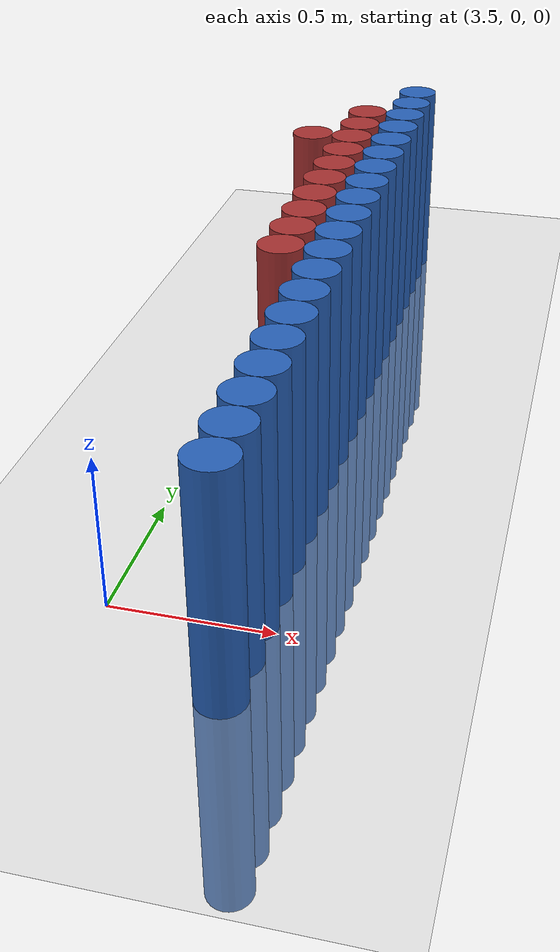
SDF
<sdf version="1.6">
 <world name="default">
  <model name="ground_plane">
   <static>1</static>
   <link name="link">
    <collision name="collision">
     <geometry><plane><normal>0 0 1</normal><size>100 100</size></plane></geometry>
     <surface><friction><ode><mu>100</mu><mu2>50</mu2></ode></friction></surface>
    </collision>
    <visual name="visual">
     <cast_shadows>0</cast_shadows>
     <geometry><plane><normal>0 0 1</normal><size>100 100</size></plane></geometry>
     <material>
      <script><uri>file://media/materials/scripts/gazebo.material</uri><name>Gazebo/Grey</name></script>
     </material>
    </visual>
   </link>
  </model>
  <model name="unit_cylinder_112">
   <static>1</static>
   <pose>3.925000 -0.125000 0.000000 0.000000 0.000000 0.000000</pose>
   <link name="link">
    <inertial>
     <mass>1</mass>
     <inertia><ixx>0.145833</ixx><ixy>0</ixy><ixz>0</ixz><iyy>0.145833</iyy><iyz>0</iyz><izz>0.125</izz></inertia>
    </inertial>
    <collision name="collision">
     <geometry><cylinder><radius>0.075000</radius><length>1.5</length></cylinder></geometry>
    </collision>
    <visual name="visual">
     <geometry><cylinder><radius>0.075000</radius><length>1.5</length></cylinder></geometry>
     <material>
      <ambient>0.152000 0.379000 0.720000 1</ambient>
      <diffuse>0.152000 0.379000 0.720000 1</diffuse>
     </material>
     <material>
      <script><name>Gazebo/Grey</name><uri>file://media/materials/scripts/gazebo.material</uri></script>
     </material>
    </visual>
   </link>
  </model>
  <model name="unit_cylinder_114">
   <static>1</static>
   <pose>3.925000 0.025000 0.000000 0.000000 0.000000 0.000000</pose>
   <link name="link">
    <inertial>
     <mass>1</mass>
     <inertia><ixx>0.145833</ixx><ixy>0</ixy><ixz>0</ixz><iyy>0.145833</iyy><iyz>0</iyz><izz>0.125</izz></inertia>
    </inertial>
    <collision name="collision">
     <geometry><cylinder><radius>0.075000</radius><length>1.5</length></cylinder></geometry>
    </collision>
    <visual name="visual">
     <geometry><cylinder><radius>0.075000</radius><length>1.5</length></cylinder></geometry>
     <material>
      <ambient>0.152000 0.379000 0.720000 1</ambient>
      <diffuse>0.152000 0.379000 0.720000 1</diffuse>
     </material>
     <material>
      <script><name>Gazebo/Grey</name><uri>file://media/materials/scripts/gazebo.material</uri></script>
     </material>
    </visual>
   </link>
  </model>
  <model name="unit_cylinder_116">
   <static>1</static>
   <pose>3.925000 0.175000 0.000000 0.000000 0.000000 0.000000</pose>
   <link name="link">
    <inertial>
     <mass>1</mass>
     <inertia><ixx>0.145833</ixx><ixy>0</ixy><ixz>0</ixz><iyy>0.145833</iyy><iyz>0</iyz><izz>0.125</izz></inertia>
    </inertial>
    <collision name="collision">
     <geometry><cylinder><radius>0.075000</radius><length>1.5</length></cylinder></geometry>
    </collision>
    <visual name="visual">
     <geometry><cylinder><radius>0.075000</radius><length>1.5</length></cylinder></geometry>
     <material>
      <ambient>0.152000 0.379000 0.720000 1</ambient>
      <diffuse>0.152000 0.379000 0.720000 1</diffuse>
     </material>
     <material>
      <script><name>Gazebo/Grey</name><uri>file://media/materials/scripts/gazebo.material</uri></script>
     </material>
    </visual>
   </link>
  </model>
  <model name="unit_cylinder_118">
   <static>1</static>
   <pose>3.925000 0.325000 0.000000 0.000000 0.000000 0.000000</pose>
   <link name="link">
    <inertial>
     <mass>1</mass>
     <inertia><ixx>0.145833</ixx><ixy>0</ixy><ixz>0</ixz><iyy>0.145833</iyy><iyz>0</iyz><izz>0.125</izz></inertia>
    </inertial>
    <collision name="collision">
     <geometry><cylinder><radius>0.075000</radius><length>1.5</length></cylinder></geometry>
    </collision>
    <visual name="visual">
     <geometry><cylinder><radius>0.075000</radius><length>1.5</length></cylinder></geometry>
     <material>
      <ambient>0.152000 0.379000 0.720000 1</ambient>
      <diffuse>0.152000 0.379000 0.720000 1</diffuse>
     </material>
     <material>
      <script><name>Gazebo/Grey</name><uri>file://media/materials/scripts/gazebo.material</uri></script>
     </material>
    </visual>
   </link>
  </model>
  <model name="unit_cylinder_120">
   <static>1</static>
   <pose>3.925000 0.475000 0.000000 0.000000 0.000000 0.000000</pose>
   <link name="link">
    <inertial>
     <mass>1</mass>
     <inertia><ixx>0.145833</ixx><ixy>0</ixy><ixz>0</ixz><iyy>0.145833</iyy><iyz>0</iyz><izz>0.125</izz></inertia>
    </inertial>
    <collision name="collision">
     <geometry><cylinder><radius>0.075000</radius><length>1.5</length></cylinder></geometry>
    </collision>
    <visual name="visual">
     <geometry><cylinder><radius>0.075000</radius><length>1.5</length></cylinder></geometry>
     <material>
      <ambient>0.152000 0.379000 0.720000 1</ambient>
      <diffuse>0.152000 0.379000 0.720000 1</diffuse>
     </material>
     <material>
      <script><name>Gazebo/Grey</name><uri>file://media/materials/scripts/gazebo.material</uri></script>
     </material>
    </visual>
   </link>
  </model>
  <model name="unit_cylinder_122">
   <static>1</static>
   <pose>3.925000 0.625000 0.000000 0.000000 0.000000 0.000000</pose>
   <link name="link">
    <inertial>
     <mass>1</mass>
     <inertia><ixx>0.145833</ixx><ixy>0</ixy><ixz>0</ixz><iyy>0.145833</iyy><iyz>0</iyz><izz>0.125</izz></inertia>
    </inertial>
    <collision name="collision">
     <geometry><cylinder><radius>0.075000</radius><length>1.5</length></cylinder></geometry>
    </collision>
    <visual name="visual">
     <geometry><cylinder><radius>0.075000</radius><length>1.5</length></cylinder></geometry>
     <material>
      <ambient>0.152000 0.379000 0.720000 1</ambient>
      <diffuse>0.152000 0.379000 0.720000 1</diffuse>
     </material>
     <material>
      <script><name>Gazebo/Grey</name><uri>file://media/materials/scripts/gazebo.material</uri></script>
     </material>
    </visual>
   </link>
  </model>
  <model name="unit_cylinder_124">
   <static>1</static>
   <pose>3.925000 0.775000 0.000000 0.000000 0.000000 0.000000</pose>
   <link name="link">
    <inertial>
     <mass>1</mass>
     <inertia><ixx>0.145833</ixx><ixy>0</ixy><ixz>0</ixz><iyy>0.145833</iyy><iyz>0</iyz><izz>0.125</izz></inertia>
    </inertial>
    <collision name="collision">
     <geometry><cylinder><radius>0.075000</radius><length>1.5</length></cylinder></geometry>
    </collision>
    <visual name="visual">
     <geometry><cylinder><radius>0.075000</radius><length>1.5</length></cylinder></geometry>
     <material>
      <ambient>0.152000 0.379000 0.720000 1</ambient>
      <diffuse>0.152000 0.379000 0.720000 1</diffuse>
     </material>
     <material>
      <script><name>Gazebo/Grey</name><uri>file://media/materials/scripts/gazebo.material</uri></script>
     </material>
    </visual>
   </link>
  </model>
  <model name="unit_cylinder_126">
   <static>1</static>
   <pose>3.925000 0.925000 0.000000 0.000000 0.000000 0.000000</pose>
   <link name="link">
    <inertial>
     <mass>1</mass>
     <inertia><ixx>0.145833</ixx><ixy>0</ixy><ixz>0</ixz><iyy>0.145833</iyy><iyz>0</iyz><izz>0.125</izz></inertia>
    </inertial>
    <collision name="collision">
     <geometry><cylinder><radius>0.075000</radius><length>1.5</length></cylinder></geometry>
    </collision>
    <visual name="visual">
     <geometry><cylinder><radius>0.075000</radius><length>1.5</length></cylinder></geometry>
     <material>
      <ambient>0.152000 0.379000 0.720000 1</ambient>
      <diffuse>0.152000 0.379000 0.720000 1</diffuse>
     </material>
     <material>
      <script><name>Gazebo/Grey</name><uri>file://media/materials/scripts/gazebo.material</uri></script>
     </material>
    </visual>
   </link>
  </model>
  <model name="unit_cylinder_128">
   <static>1</static>
   <pose>3.925000 1.075000 0.000000 0.000000 0.000000 0.000000</pose>
   <link name="link">
    <inertial>
     <mass>1</mass>
     <inertia><ixx>0.145833</ixx><ixy>0</ixy><ixz>0</ixz><iyy>0.145833</iyy><iyz>0</iyz><izz>0.125</izz></inertia>
    </inertial>
    <collision name="collision">
     <geometry><cylinder><radius>0.075000</radius><length>1.5</length></cylinder></geometry>
    </collision>
    <visual name="visual">
     <geometry><cylinder><radius>0.075000</radius><length>1.5</length></cylinder></geometry>
     <material>
      <ambient>0.152000 0.379000 0.720000 1</ambient>
      <diffuse>0.152000 0.379000 0.720000 1</diffuse>
     </material>
     <material>
      <script><name>Gazebo/Grey</name><uri>file://media/materials/scripts/gazebo.material</uri></script>
     </material>
    </visual>
   </link>
  </model>
  <model name="unit_cylinder_130">
   <static>1</static>
   <pose>3.925000 1.225000 0.000000 0.000000 0.000000 0.000000</pose>
   <link name="link">
    <inertial>
     <mass>1</mass>
     <inertia><ixx>0.145833</ixx><ixy>0</ixy><ixz>0</ixz><iyy>0.145833</iyy><iyz>0</iyz><izz>0.125</izz></inertia>
    </inertial>
    <collision name="collision">
     <geometry><cylinder><radius>0.075000</radius><length>1.5</length></cylinder></geometry>
    </collision>
    <visual name="visual">
     <geometry><cylinder><radius>0.075000</radius><length>1.5</length></cylinder></geometry>
     <material>
      <ambient>0.152000 0.379000 0.720000 1</ambient>
      <diffuse>0.152000 0.379000 0.720000 1</diffuse>
     </material>
     <material>
      <script><name>Gazebo/Grey</name><uri>file://media/materials/scripts/gazebo.material</uri></script>
     </material>
    </visual>
   </link>
  </model>
  <model name="unit_cylinder_132">
   <static>1</static>
   <pose>3.925000 1.375000 0.000000 0.000000 0.000000 0.000000</pose>
   <link name="link">
    <inertial>
     <mass>1</mass>
     <inertia><ixx>0.145833</ixx><ixy>0</ixy><ixz>0</ixz><iyy>0.145833</iyy><iyz>0</iyz><izz>0.125</izz></inertia>
    </inertial>
    <collision name="collision">
     <geometry><cylinder><radius>0.075000</radius><length>1.5</length></cylinder></geometry>
    </collision>
    <visual name="visual">
     <geometry><cylinder><radius>0.075000</radius><length>1.5</length></cylinder></geometry>
     <material>
      <ambient>0.152000 0.379000 0.720000 1</ambient>
      <diffuse>0.152000 0.379000 0.720000 1</diffuse>
     </material>
     <material>
      <script><name>Gazebo/Grey</name><uri>file://media/materials/scripts/gazebo.material</uri></script>
     </material>
    </visual>
   </link>
  </model>
  <model name="unit_cylinder_134">
   <static>1</static>
   <pose>3.925000 1.525000 0.000000 0.000000 0.000000 0.000000</pose>
   <link name="link">
    <inertial>
     <mass>1</mass>
     <inertia><ixx>0.145833</ixx><ixy>0</ixy><ixz>0</ixz><iyy>0.145833</iyy><iyz>0</iyz><izz>0.125</izz></inertia>
    </inertial>
    <collision name="collision">
     <geometry><cylinder><radius>0.075000</radius><length>1.5</length></cylinder></geometry>
    </collision>
    <visual name="visual">
     <geometry><cylinder><radius>0.075000</radius><length>1.5</length></cylinder></geometry>
     <material>
      <ambient>0.152000 0.379000 0.720000 1</ambient>
      <diffuse>0.152000 0.379000 0.720000 1</diffuse>
     </material>
     <material>
      <script><name>Gazebo/Grey</name><uri>file://media/materials/scripts/gazebo.material</uri></script>
     </material>
    </visual>
   </link>
  </model>
  <model name="unit_cylinder_136">
   <static>1</static>
   <pose>3.925000 1.675000 0.000000 0.000000 0.000000 0.000000</pose>
   <link name="link">
    <inertial>
     <mass>1</mass>
     <inertia><ixx>0.145833</ixx><ixy>0</ixy><ixz>0</ixz><iyy>0.145833</iyy><iyz>0</iyz><izz>0.125</izz></inertia>
    </inertial>
    <collision name="collision">
     <geometry><cylinder><radius>0.075000</radius><length>1.5</length></cylinder></geometry>
    </collision>
    <visual name="visual">
     <geometry><cylinder><radius>0.075000</radius><length>1.5</length></cylinder></geometry>
     <material>
      <ambient>0.152000 0.379000 0.720000 1</ambient>
      <diffuse>0.152000 0.379000 0.720000 1</diffuse>
     </material>
     <material>
      <script><name>Gazebo/Grey</name><uri>file://media/materials/scripts/gazebo.material</uri></script>
     </material>
    </visual>
   </link>
  </model>
  <model name="unit_cylinder_138">
   <static>1</static>
   <pose>3.925000 1.825000 0.000000 0.000000 0.000000 0.000000</pose>
   <link name="link">
    <inertial>
     <mass>1</mass>
     <inertia><ixx>0.145833</ixx><ixy>0</ixy><ixz>0</ixz><iyy>0.145833</iyy><iyz>0</iyz><izz>0.125</izz></inertia>
    </inertial>
    <collision name="collision">
     <geometry><cylinder><radius>0.075000</radius><length>1.5</length></cylinder></geometry>
    </collision>
    <visual name="visual">
     <geometry><cylinder><radius>0.075000</radius><length>1.5</length></cylinder></geometry>
     <material>
      <ambient>0.152000 0.379000 0.720000 1</ambient>
      <diffuse>0.152000 0.379000 0.720000 1</diffuse>
     </material>
     <material>
      <script><name>Gazebo/Grey</name><uri>file://media/materials/scripts/gazebo.material</uri></script>
     </material>
    </visual>
   </link>
  </model>
  <model name="unit_cylinder_140">
   <static>1</static>
   <pose>3.925000 1.975000 0.000000 0.000000 0.000000 0.000000</pose>
   <link name="link">
    <inertial>
     <mass>1</mass>
     <inertia><ixx>0.145833</ixx><ixy>0</ixy><ixz>0</ixz><iyy>0.145833</iyy><iyz>0</iyz><izz>0.125</izz></inertia>
    </inertial>
    <collision name="collision">
     <geometry><cylinder><radius>0.075000</radius><length>1.5</length></cylinder></geometry>
    </collision>
    <visual name="visual">
     <geometry><cylinder><radius>0.075000</radius><length>1.5</length></cylinder></geometry>
     <material>
      <ambient>0.152000 0.379000 0.720000 1</ambient>
      <diffuse>0.152000 0.379000 0.720000 1</diffuse>
     </material>
     <material>
      <script><name>Gazebo/Grey</name><uri>file://media/materials/scripts/gazebo.material</uri></script>
     </material>
    </visual>
   </link>
  </model>
  <model name="unit_cylinder_142">
   <static>1</static>
   <pose>3.925000 2.125000 0.000000 0.000000 0.000000 0.000000</pose>
   <link name="link">
    <inertial>
     <mass>1</mass>
     <inertia><ixx>0.145833</ixx><ixy>0</ixy><ixz>0</ixz><iyy>0.145833</iyy><iyz>0</iyz><izz>0.125</izz></inertia>
    </inertial>
    <collision name="collision">
     <geometry><cylinder><radius>0.075000</radius><length>1.5</length></cylinder></geometry>
    </collision>
    <visual name="visual">
     <geometry><cylinder><radius>0.075000</radius><length>1.5</length></cylinder></geometry>
     <material>
      <ambient>0.152000 0.379000 0.720000 1</ambient>
      <diffuse>0.152000 0.379000 0.720000 1</diffuse>
     </material>
     <material>
      <script><name>Gazebo/Grey</name><uri>file://media/materials/scripts/gazebo.material</uri></script>
     </material>
    </visual>
   </link>
  </model>
  <model name="unit_cylinder_144">
   <static>1</static>
   <pose>3.925000 2.275000 0.000000 0.000000 0.000000 0.000000</pose>
   <link name="link">
    <inertial>
     <mass>1</mass>
     <inertia><ixx>0.145833</ixx><ixy>0</ixy><ixz>0</ixz><iyy>0.145833</iyy><iyz>0</iyz><izz>0.125</izz></inertia>
    </inertial>
    <collision name="collision">
     <geometry><cylinder><radius>0.075000</radius><length>1.5</length></cylinder></geometry>
    </collision>
    <visual name="visual">
     <geometry><cylinder><radius>0.075000</radius><length>1.5</length></cylinder></geometry>
     <material>
      <ambient>0.152000 0.379000 0.720000 1</ambient>
      <diffuse>0.152000 0.379000 0.720000 1</diffuse>
     </material>
     <material>
      <script><name>Gazebo/Grey</name><uri>file://media/materials/scripts/gazebo.material</uri></script>
     </material>
    </visual>
   </link>
  </model>
  <model name="unit_cylinder_146">
   <static>1</static>
   <pose>3.925000 2.425000 0.000000 0.000000 0.000000 0.000000</pose>
   <link name="link">
    <inertial>
     <mass>1</mass>
     <inertia><ixx>0.145833</ixx><ixy>0</ixy><ixz>0</ixz><iyy>0.145833</iyy><iyz>0</iyz><izz>0.125</izz></inertia>
    </inertial>
    <collision name="collision">
     <geometry><cylinder><radius>0.075000</radius><length>1.5</length></cylinder></geometry>
    </collision>
    <visual name="visual">
     <geometry><cylinder><radius>0.075000</radius><length>1.5</length></cylinder></geometry>
     <material>
      <ambient>0.152000 0.379000 0.720000 1</ambient>
      <diffuse>0.152000 0.379000 0.720000 1</diffuse>
     </material>
     <material>
      <script><name>Gazebo/Grey</name><uri>file://media/materials/scripts/gazebo.material</uri></script>
     </material>
    </visual>
   </link>
  </model>
  <model name="unit_cylinder_148">
   <static>1</static>
   <pose>3.925000 2.575000 0.000000 0.000000 0.000000 0.000000</pose>
   <link name="link">
    <inertial>
     <mass>1</mass>
     <inertia><ixx>0.145833</ixx><ixy>0</ixy><ixz>0</ixz><iyy>0.145833</iyy><iyz>0</iyz><izz>0.125</izz></inertia>
    </inertial>
    <collision name="collision">
     <geometry><cylinder><radius>0.075000</radius><length>1.5</length></cylinder></geometry>
    </collision>
    <visual name="visual">
     <geometry><cylinder><radius>0.075000</radius><length>1.5</length></cylinder></geometry>
     <material>
      <ambient>0.152000 0.379000 0.720000 1</ambient>
      <diffuse>0.152000 0.379000 0.720000 1</diffuse>
     </material>
     <material>
      <script><name>Gazebo/Grey</name><uri>file://media/materials/scripts/gazebo.material</uri></script>
     </material>
    </visual>
   </link>
  </model>
  <model name="unit_cylinder_286">
   <static>1</static>
   <pose>3.625000 1.975000 0.000000 0.000000 0.000000 0.000000</pose>
   <link name="link">
    <inertial>
     <mass>1</mass>
     <inertia><ixx>0.145833</ixx><ixy>0</ixy><ixz>0</ixz><iyy>0.145833</iyy><iyz>0</iyz><izz>0.125</izz></inertia>
    </inertial>
    <collision name="collision">
     <geometry><cylinder><radius>0.075000</radius><length>1.5</length></cylinder></geometry>
    </collision>
    <visual name="visual">
     <geometry><cylinder><radius>0.075000</radius><length>1.5</length></cylinder></geometry>
     <material>
      <ambient>0.648000 0.192000 0.192000 1</ambient>
      <diffuse>0.648000 0.192000 0.192000 1</diffuse>
     </material>
     <material>
      <script><name>Gazebo/Grey</name><uri>file://media/materials/scripts/gazebo.material</uri></script>
     </material>
    </visual>
   </link>
  </model>
  <model name="unit_cylinder_291">
   <static>1</static>
   <pose>3.775000 0.925000 0.000000 0.000000 0.000000 0.000000</pose>
   <link name="link">
    <inertial>
     <mass>1</mass>
     <inertia><ixx>0.145833</ixx><ixy>0</ixy><ixz>0</ixz><iyy>0.145833</iyy><iyz>0</iyz><izz>0.125</izz></inertia>
    </inertial>
    <collision name="collision">
     <geometry><cylinder><radius>0.075000</radius><length>1.5</length></cylinder></geometry>
    </collision>
    <visual name="visual">
     <geometry><cylinder><radius>0.075000</radius><length>1.5</length></cylinder></geometry>
     <material>
      <ambient>0.648000 0.192000 0.192000 1</ambient>
      <diffuse>0.648000 0.192000 0.192000 1</diffuse>
     </material>
     <material>
      <script><name>Gazebo/Grey</name><uri>file://media/materials/scripts/gazebo.material</uri></script>
     </material>
    </visual>
   </link>
  </model>
  <model name="unit_cylinder_292">
   <static>1</static>
   <pose>3.775000 1.075000 0.000000 0.000000 0.000000 0.000000</pose>
   <link name="link">
    <inertial>
     <mass>1</mass>
     <inertia><ixx>0.145833</ixx><ixy>0</ixy><ixz>0</ixz><iyy>0.145833</iyy><iyz>0</iyz><izz>0.125</izz></inertia>
    </inertial>
    <collision name="collision">
     <geometry><cylinder><radius>0.075000</radius><length>1.5</length></cylinder></geometry>
    </collision>
    <visual name="visual">
     <geometry><cylinder><radius>0.075000</radius><length>1.5</length></cylinder></geometry>
     <material>
      <ambient>0.648000 0.192000 0.192000 1</ambient>
      <diffuse>0.648000 0.192000 0.192000 1</diffuse>
     </material>
     <material>
      <script><name>Gazebo/Grey</name><uri>file://media/materials/scripts/gazebo.material</uri></script>
     </material>
    </visual>
   </link>
  </model>
  <model name="unit_cylinder_293">
   <static>1</static>
   <pose>3.775000 1.225000 0.000000 0.000000 0.000000 0.000000</pose>
   <link name="link">
    <inertial>
     <mass>1</mass>
     <inertia><ixx>0.145833</ixx><ixy>0</ixy><ixz>0</ixz><iyy>0.145833</iyy><iyz>0</iyz><izz>0.125</izz></inertia>
    </inertial>
    <collision name="collision">
     <geometry><cylinder><radius>0.075000</radius><length>1.5</length></cylinder></geometry>
    </collision>
    <visual name="visual">
     <geometry><cylinder><radius>0.075000</radius><length>1.5</length></cylinder></geometry>
     <material>
      <ambient>0.648000 0.192000 0.192000 1</ambient>
      <diffuse>0.648000 0.192000 0.192000 1</diffuse>
     </material>
     <material>
      <script><name>Gazebo/Grey</name><uri>file://media/materials/scripts/gazebo.material</uri></script>
     </material>
    </visual>
   </link>
  </model>
  <model name="unit_cylinder_294">
   <static>1</static>
   <pose>3.775000 1.375000 0.000000 0.000000 0.000000 0.000000</pose>
   <link name="link">
    <inertial>
     <mass>1</mass>
     <inertia><ixx>0.145833</ixx><ixy>0</ixy><ixz>0</ixz><iyy>0.145833</iyy><iyz>0</iyz><izz>0.125</izz></inertia>
    </inertial>
    <collision name="collision">
     <geometry><cylinder><radius>0.075000</radius><length>1.5</length></cylinder></geometry>
    </collision>
    <visual name="visual">
     <geometry><cylinder><radius>0.075000</radius><length>1.5</length></cylinder></geometry>
     <material>
      <ambient>0.648000 0.192000 0.192000 1</ambient>
      <diffuse>0.648000 0.192000 0.192000 1</diffuse>
     </material>
     <material>
      <script><name>Gazebo/Grey</name><uri>file://media/materials/scripts/gazebo.material</uri></script>
     </material>
    </visual>
   </link>
  </model>
  <model name="unit_cylinder_295">
   <static>1</static>
   <pose>3.775000 1.525000 0.000000 0.000000 0.000000 0.000000</pose>
   <link name="link">
    <inertial>
     <mass>1</mass>
     <inertia><ixx>0.145833</ixx><ixy>0</ixy><ixz>0</ixz><iyy>0.145833</iyy><iyz>0</iyz><izz>0.125</izz></inertia>
    </inertial>
    <collision name="collision">
     <geometry><cylinder><radius>0.075000</radius><length>1.5</length></cylinder></geometry>
    </collision>
    <visual name="visual">
     <geometry><cylinder><radius>0.075000</radius><length>1.5</length></cylinder></geometry>
     <material>
      <ambient>0.648000 0.192000 0.192000 1</ambient>
      <diffuse>0.648000 0.192000 0.192000 1</diffuse>
     </material>
     <material>
      <script><name>Gazebo/Grey</name><uri>file://media/materials/scripts/gazebo.material</uri></script>
     </material>
    </visual>
   </link>
  </model>
  <model name="unit_cylinder_296">
   <static>1</static>
   <pose>3.775000 1.675000 0.000000 0.000000 0.000000 0.000000</pose>
   <link name="link">
    <inertial>
     <mass>1</mass>
     <inertia><ixx>0.145833</ixx><ixy>0</ixy><ixz>0</ixz><iyy>0.145833</iyy><iyz>0</iyz><izz>0.125</izz></inertia>
    </inertial>
    <collision name="collision">
     <geometry><cylinder><radius>0.075000</radius><length>1.5</length></cylinder></geometry>
    </collision>
    <visual name="visual">
     <geometry><cylinder><radius>0.075000</radius><length>1.5</length></cylinder></geometry>
     <material>
      <ambient>0.648000 0.192000 0.192000 1</ambient>
      <diffuse>0.648000 0.192000 0.192000 1</diffuse>
     </material>
     <material>
      <script><name>Gazebo/Grey</name><uri>file://media/materials/scripts/gazebo.material</uri></script>
     </material>
    </visual>
   </link>
  </model>
  <model name="unit_cylinder_297">
   <static>1</static>
   <pose>3.775000 1.825000 0.000000 0.000000 0.000000 0.000000</pose>
   <link name="link">
    <inertial>
     <mass>1</mass>
     <inertia><ixx>0.145833</ixx><ixy>0</ixy><ixz>0</ixz><iyy>0.145833</iyy><iyz>0</iyz><izz>0.125</izz></inertia>
    </inertial>
    <collision name="collision">
     <geometry><cylinder><radius>0.075000</radius><length>1.5</length></cylinder></geometry>
    </collision>
    <visual name="visual">
     <geometry><cylinder><radius>0.075000</radius><length>1.5</length></cylinder></geometry>
     <material>
      <ambient>0.648000 0.192000 0.192000 1</ambient>
      <diffuse>0.648000 0.192000 0.192000 1</diffuse>
     </material>
     <material>
      <script><name>Gazebo/Grey</name><uri>file://media/materials/scripts/gazebo.material</uri></script>
     </material>
    </visual>
   </link>
  </model>
  <model name="unit_cylinder_298">
   <static>1</static>
   <pose>3.775000 1.975000 0.000000 0.000000 0.000000 0.000000</pose>
   <link name="link">
    <inertial>
     <mass>1</mass>
     <inertia><ixx>0.145833</ixx><ixy>0</ixy><ixz>0</ixz><iyy>0.145833</iyy><iyz>0</iyz><izz>0.125</izz></inertia>
    </inertial>
    <collision name="collision">
     <geometry><cylinder><radius>0.075000</radius><length>1.5</length></cylinder></geometry>
    </collision>
    <visual name="visual">
     <geometry><cylinder><radius>0.075000</radius><length>1.5</length></cylinder></geometry>
     <material>
      <ambient>0.648000 0.192000 0.192000 1</ambient>
      <diffuse>0.648000 0.192000 0.192000 1</diffuse>
     </material>
     <material>
      <script><name>Gazebo/Grey</name><uri>file://media/materials/scripts/gazebo.material</uri></script>
     </material>
    </visual>
   </link>
  </model>
  <model name="unit_cylinder_299">
   <static>1</static>
   <pose>3.775000 2.125000 0.000000 0.000000 0.000000 0.000000</pose>
   <link name="link">
    <inertial>
     <mass>1</mass>
     <inertia><ixx>0.145833</ixx><ixy>0</ixy><ixz>0</ixz><iyy>0.145833</iyy><iyz>0</iyz><izz>0.125</izz></inertia>
    </inertial>
    <collision name="collision">
     <geometry><cylinder><radius>0.075000</radius><length>1.5</length></cylinder></geometry>
    </collision>
    <visual name="visual">
     <geometry><cylinder><radius>0.075000</radius><length>1.5</length></cylinder></geometry>
     <material>
      <ambient>0.648000 0.192000 0.192000 1</ambient>
      <diffuse>0.648000 0.192000 0.192000 1</diffuse>
     </material>
     <material>
      <script><name>Gazebo/Grey</name><uri>file://media/materials/scripts/gazebo.material</uri></script>
     </material>
    </visual>
   </link>
  </model>
  <model name="unit_cylinder_300">
   <static>1</static>
   <pose>3.775000 2.275000 0.000000 0.000000 0.000000 0.000000</pose>
   <link name="link">
    <inertial>
     <mass>1</mass>
     <inertia><ixx>0.145833</ixx><ixy>0</ixy><ixz>0</ixz><iyy>0.145833</iyy><iyz>0</iyz><izz>0.125</izz></inertia>
    </inertial>
    <collision name="collision">
     <geometry><cylinder><radius>0.075000</radius><length>1.5</length></cylinder></geometry>
    </collision>
    <visual name="visual">
     <geometry><cylinder><radius>0.075000</radius><length>1.5</length></cylinder></geometry>
     <material>
      <ambient>0.648000 0.192000 0.192000 1</ambient>
      <diffuse>0.648000 0.192000 0.192000 1</diffuse>
     </material>
     <material>
      <script><name>Gazebo/Grey</name><uri>file://media/materials/scripts/gazebo.material</uri></script>
     </material>
    </visual>
   </link>
  </model>
  <model name="unit_cylinder_315">
   <static>1</static>
   <pose>3.925000 -0.275000 0.000000 0.000000 0.000000 0.000000</pose>
   <link name="link">
    <inertial>
     <mass>1</mass>
     <inertia><ixx>0.145833</ixx><ixy>0</ixy><ixz>0</ixz><iyy>0.145833</iyy><iyz>0</iyz><izz>0.125</izz></inertia>
    </inertial>
    <collision name="collision">
     <geometry><cylinder><radius>0.075000</radius><length>1.5</length></cylinder></geometry>
    </collision>
    <visual name="visual">
     <geometry><cylinder><radius>0.075000</radius><length>1.5</length></cylinder></geometry>
     <material>
      <ambient>0.152000 0.379000 0.720000 1</ambient>
      <diffuse>0.152000 0.379000 0.720000 1</diffuse>
     </material>
     <material>
      <script><name>Gazebo/Grey</name><uri>file://media/materials/scripts/gazebo.material</uri></script>
     </material>
    </visual>
   </link>
  </model>
  <model name="unit_cylinder_316">
   <static>1</static>
   <pose>3.925000 -0.125000 0.000000 0.000000 0.000000 0.000000</pose>
   <link name="link">
    <inertial>
     <mass>1</mass>
     <inertia><ixx>0.145833</ixx><ixy>0</ixy><ixz>0</ixz><iyy>0.145833</iyy><iyz>0</iyz><izz>0.125</izz></inertia>
    </inertial>
    <collision name="collision">
     <geometry><cylinder><radius>0.075000</radius><length>1.5</length></cylinder></geometry>
    </collision>
    <visual name="visual">
     <geometry><cylinder><radius>0.075000</radius><length>1.5</length></cylinder></geometry>
     <material>
      <ambient>0.152000 0.379000 0.720000 1</ambient>
      <diffuse>0.152000 0.379000 0.720000 1</diffuse>
     </material>
     <material>
      <script><name>Gazebo/Grey</name><uri>file://media/materials/scripts/gazebo.material</uri></script>
     </material>
    </visual>
   </link>
  </model>
  <model name="unit_cylinder_317">
   <static>1</static>
   <pose>3.925000 0.025000 0.000000 0.000000 0.000000 0.000000</pose>
   <link name="link">
    <inertial>
     <mass>1</mass>
     <inertia><ixx>0.145833</ixx><ixy>0</ixy><ixz>0</ixz><iyy>0.145833</iyy><iyz>0</iyz><izz>0.125</izz></inertia>
    </inertial>
    <collision name="collision">
     <geometry><cylinder><radius>0.075000</radius><length>1.5</length></cylinder></geometry>
    </collision>
    <visual name="visual">
     <geometry><cylinder><radius>0.075000</radius><length>1.5</length></cylinder></geometry>
     <material>
      <ambient>0.152000 0.379000 0.720000 1</ambient>
      <diffuse>0.152000 0.379000 0.720000 1</diffuse>
     </material>
     <material>
      <script><name>Gazebo/Grey</name><uri>file://media/materials/scripts/gazebo.material</uri></script>
     </material>
    </visual>
   </link>
  </model>
  <model name="unit_cylinder_318">
   <static>1</static>
   <pose>3.925000 0.175000 0.000000 0.000000 0.000000 0.000000</pose>
   <link name="link">
    <inertial>
     <mass>1</mass>
     <inertia><ixx>0.145833</ixx><ixy>0</ixy><ixz>0</ixz><iyy>0.145833</iyy><iyz>0</iyz><izz>0.125</izz></inertia>
    </inertial>
    <collision name="collision">
     <geometry><cylinder><radius>0.075000</radius><length>1.5</length></cylinder></geometry>
    </collision>
    <visual name="visual">
     <geometry><cylinder><radius>0.075000</radius><length>1.5</length></cylinder></geometry>
     <material>
      <ambient>0.152000 0.379000 0.720000 1</ambient>
      <diffuse>0.152000 0.379000 0.720000 1</diffuse>
     </material>
     <material>
      <script><name>Gazebo/Grey</name><uri>file://media/materials/scripts/gazebo.material</uri></script>
     </material>
    </visual>
   </link>
  </model>
  <model name="unit_cylinder_319">
   <static>1</static>
   <pose>3.925000 0.325000 0.000000 0.000000 0.000000 0.000000</pose>
   <link name="link">
    <inertial>
     <mass>1</mass>
     <inertia><ixx>0.145833</ixx><ixy>0</ixy><ixz>0</ixz><iyy>0.145833</iyy><iyz>0</iyz><izz>0.125</izz></inertia>
    </inertial>
    <collision name="collision">
     <geometry><cylinder><radius>0.075000</radius><length>1.5</length></cylinder></geometry>
    </collision>
    <visual name="visual">
     <geometry><cylinder><radius>0.075000</radius><length>1.5</length></cylinder></geometry>
     <material>
      <ambient>0.152000 0.379000 0.720000 1</ambient>
      <diffuse>0.152000 0.379000 0.720000 1</diffuse>
     </material>
     <material>
      <script><name>Gazebo/Grey</name><uri>file://media/materials/scripts/gazebo.material</uri></script>
     </material>
    </visual>
   </link>
  </model>
  <model name="unit_cylinder_320">
   <static>1</static>
   <pose>3.925000 0.475000 0.000000 0.000000 0.000000 0.000000</pose>
   <link name="link">
    <inertial>
     <mass>1</mass>
     <inertia><ixx>0.145833</ixx><ixy>0</ixy><ixz>0</ixz><iyy>0.145833</iyy><iyz>0</iyz><izz>0.125</izz></inertia>
    </inertial>
    <collision name="collision">
     <geometry><cylinder><radius>0.075000</radius><length>1.5</length></cylinder></geometry>
    </collision>
    <visual name="visual">
     <geometry><cylinder><radius>0.075000</radius><length>1.5</length></cylinder></geometry>
     <material>
      <ambient>0.152000 0.379000 0.720000 1</ambient>
      <diffuse>0.152000 0.379000 0.720000 1</diffuse>
     </material>
     <material>
      <script><name>Gazebo/Grey</name><uri>file://media/materials/scripts/gazebo.material</uri></script>
     </material>
    </visual>
   </link>
  </model>
  <model name="unit_cylinder_321">
   <static>1</static>
   <pose>3.925000 0.625000 0.000000 0.000000 0.000000 0.000000</pose>
   <link name="link">
    <inertial>
     <mass>1</mass>
     <inertia><ixx>0.145833</ixx><ixy>0</ixy><ixz>0</ixz><iyy>0.145833</iyy><iyz>0</iyz><izz>0.125</izz></inertia>
    </inertial>
    <collision name="collision">
     <geometry><cylinder><radius>0.075000</radius><length>1.5</length></cylinder></geometry>
    </collision>
    <visual name="visual">
     <geometry><cylinder><radius>0.075000</radius><length>1.5</length></cylinder></geometry>
     <material>
      <ambient>0.152000 0.379000 0.720000 1</ambient>
      <diffuse>0.152000 0.379000 0.720000 1</diffuse>
     </material>
     <material>
      <script><name>Gazebo/Grey</name><uri>file://media/materials/scripts/gazebo.material</uri></script>
     </material>
    </visual>
   </link>
  </model>
  <model name="unit_cylinder_322">
   <static>1</static>
   <pose>3.925000 0.775000 0.000000 0.000000 0.000000 0.000000</pose>
   <link name="link">
    <inertial>
     <mass>1</mass>
     <inertia><ixx>0.145833</ixx><ixy>0</ixy><ixz>0</ixz><iyy>0.145833</iyy><iyz>0</iyz><izz>0.125</izz></inertia>
    </inertial>
    <collision name="collision">
     <geometry><cylinder><radius>0.075000</radius><length>1.5</length></cylinder></geometry>
    </collision>
    <visual name="visual">
     <geometry><cylinder><radius>0.075000</radius><length>1.5</length></cylinder></geometry>
     <material>
      <ambient>0.152000 0.379000 0.720000 1</ambient>
      <diffuse>0.152000 0.379000 0.720000 1</diffuse>
     </material>
     <material>
      <script><name>Gazebo/Grey</name><uri>file://media/materials/scripts/gazebo.material</uri></script>
     </material>
    </visual>
   </link>
  </model>
  <model name="unit_cylinder_323">
   <static>1</static>
   <pose>3.925000 0.925000 0.000000 0.000000 0.000000 0.000000</pose>
   <link name="link">
    <inertial>
     <mass>1</mass>
     <inertia><ixx>0.145833</ixx><ixy>0</ixy><ixz>0</ixz><iyy>0.145833</iyy><iyz>0</iyz><izz>0.125</izz></inertia>
    </inertial>
    <collision name="collision">
     <geometry><cylinder><radius>0.075000</radius><length>1.5</length></cylinder></geometry>
    </collision>
    <visual name="visual">
     <geometry><cylinder><radius>0.075000</radius><length>1.5</length></cylinder></geometry>
     <material>
      <ambient>0.152000 0.379000 0.720000 1</ambient>
      <diffuse>0.152000 0.379000 0.720000 1</diffuse>
     </material>
     <material>
      <script><name>Gazebo/Grey</name><uri>file://media/materials/scripts/gazebo.material</uri></script>
     </material>
    </visual>
   </link>
  </model>
  <model name="unit_cylinder_324">
   <static>1</static>
   <pose>3.925000 1.075000 0.000000 0.000000 0.000000 0.000000</pose>
   <link name="link">
    <inertial>
     <mass>1</mass>
     <inertia><ixx>0.145833</ixx><ixy>0</ixy><ixz>0</ixz><iyy>0.145833</iyy><iyz>0</iyz><izz>0.125</izz></inertia>
    </inertial>
    <collision name="collision">
     <geometry><cylinder><radius>0.075000</radius><length>1.5</length></cylinder></geometry>
    </collision>
    <visual name="visual">
     <geometry><cylinder><radius>0.075000</radius><length>1.5</length></cylinder></geometry>
     <material>
      <ambient>0.152000 0.379000 0.720000 1</ambient>
      <diffuse>0.152000 0.379000 0.720000 1</diffuse>
     </material>
     <material>
      <script><name>Gazebo/Grey</name><uri>file://media/materials/scripts/gazebo.material</uri></script>
     </material>
    </visual>
   </link>
  </model>
  <model name="unit_cylinder_325">
   <static>1</static>
   <pose>3.925000 1.225000 0.000000 0.000000 0.000000 0.000000</pose>
   <link name="link">
    <inertial>
     <mass>1</mass>
     <inertia><ixx>0.145833</ixx><ixy>0</ixy><ixz>0</ixz><iyy>0.145833</iyy><iyz>0</iyz><izz>0.125</izz></inertia>
    </inertial>
    <collision name="collision">
     <geometry><cylinder><radius>0.075000</radius><length>1.5</length></cylinder></geometry>
    </collision>
    <visual name="visual">
     <geometry><cylinder><radius>0.075000</radius><length>1.5</length></cylinder></geometry>
     <material>
      <ambient>0.152000 0.379000 0.720000 1</ambient>
      <diffuse>0.152000 0.379000 0.720000 1</diffuse>
     </material>
     <material>
      <script><name>Gazebo/Grey</name><uri>file://media/materials/scripts/gazebo.material</uri></script>
     </material>
    </visual>
   </link>
  </model>
  <model name="unit_cylinder_326">
   <static>1</static>
   <pose>3.925000 1.375000 0.000000 0.000000 0.000000 0.000000</pose>
   <link name="link">
    <inertial>
     <mass>1</mass>
     <inertia><ixx>0.145833</ixx><ixy>0</ixy><ixz>0</ixz><iyy>0.145833</iyy><iyz>0</iyz><izz>0.125</izz></inertia>
    </inertial>
    <collision name="collision">
     <geometry><cylinder><radius>0.075000</radius><length>1.5</length></cylinder></geometry>
    </collision>
    <visual name="visual">
     <geometry><cylinder><radius>0.075000</radius><length>1.5</length></cylinder></geometry>
     <material>
      <ambient>0.152000 0.379000 0.720000 1</ambient>
      <diffuse>0.152000 0.379000 0.720000 1</diffuse>
     </material>
     <material>
      <script><name>Gazebo/Grey</name><uri>file://media/materials/scripts/gazebo.material</uri></script>
     </material>
    </visual>
   </link>
  </model>
  <model name="unit_cylinder_327">
   <static>1</static>
   <pose>3.925000 1.525000 0.000000 0.000000 0.000000 0.000000</pose>
   <link name="link">
    <inertial>
     <mass>1</mass>
     <inertia><ixx>0.145833</ixx><ixy>0</ixy><ixz>0</ixz><iyy>0.145833</iyy><iyz>0</iyz><izz>0.125</izz></inertia>
    </inertial>
    <collision name="collision">
     <geometry><cylinder><radius>0.075000</radius><length>1.5</length></cylinder></geometry>
    </collision>
    <visual name="visual">
     <geometry><cylinder><radius>0.075000</radius><length>1.5</length></cylinder></geometry>
     <material>
      <ambient>0.152000 0.379000 0.720000 1</ambient>
      <diffuse>0.152000 0.379000 0.720000 1</diffuse>
     </material>
     <material>
      <script><name>Gazebo/Grey</name><uri>file://media/materials/scripts/gazebo.material</uri></script>
     </material>
    </visual>
   </link>
  </model>
  <model name="unit_cylinder_328">
   <static>1</static>
   <pose>3.925000 1.675000 0.000000 0.000000 0.000000 0.000000</pose>
   <link name="link">
    <inertial>
     <mass>1</mass>
     <inertia><ixx>0.145833</ixx><ixy>0</ixy><ixz>0</ixz><iyy>0.145833</iyy><iyz>0</iyz><izz>0.125</izz></inertia>
    </inertial>
    <collision name="collision">
     <geometry><cylinder><radius>0.075000</radius><length>1.5</length></cylinder></geometry>
    </collision>
    <visual name="visual">
     <geometry><cylinder><radius>0.075000</radius><length>1.5</length></cylinder></geometry>
     <material>
      <ambient>0.152000 0.379000 0.720000 1</ambient>
      <diffuse>0.152000 0.379000 0.720000 1</diffuse>
     </material>
     <material>
      <script><name>Gazebo/Grey</name><uri>file://media/materials/scripts/gazebo.material</uri></script>
     </material>
    </visual>
   </link>
  </model>
  <model name="unit_cylinder_329">
   <static>1</static>
   <pose>3.925000 1.825000 0.000000 0.000000 0.000000 0.000000</pose>
   <link name="link">
    <inertial>
     <mass>1</mass>
     <inertia><ixx>0.145833</ixx><ixy>0</ixy><ixz>0</ixz><iyy>0.145833</iyy><iyz>0</iyz><izz>0.125</izz></inertia>
    </inertial>
    <collision name="collision">
     <geometry><cylinder><radius>0.075000</radius><length>1.5</length></cylinder></geometry>
    </collision>
    <visual name="visual">
     <geometry><cylinder><radius>0.075000</radius><length>1.5</length></cylinder></geometry>
     <material>
      <ambient>0.152000 0.379000 0.720000 1</ambient>
      <diffuse>0.152000 0.379000 0.720000 1</diffuse>
     </material>
     <material>
      <script><name>Gazebo/Grey</name><uri>file://media/materials/scripts/gazebo.material</uri></script>
     </material>
    </visual>
   </link>
  </model>
  <model name="unit_cylinder_330">
   <static>1</static>
   <pose>3.925000 1.975000 0.000000 0.000000 0.000000 0.000000</pose>
   <link name="link">
    <inertial>
     <mass>1</mass>
     <inertia><ixx>0.145833</ixx><ixy>0</ixy><ixz>0</ixz><iyy>0.145833</iyy><iyz>0</iyz><izz>0.125</izz></inertia>
    </inertial>
    <collision name="collision">
     <geometry><cylinder><radius>0.075000</radius><length>1.5</length></cylinder></geometry>
    </collision>
    <visual name="visual">
     <geometry><cylinder><radius>0.075000</radius><length>1.5</length></cylinder></geometry>
     <material>
      <ambient>0.152000 0.379000 0.720000 1</ambient>
      <diffuse>0.152000 0.379000 0.720000 1</diffuse>
     </material>
     <material>
      <script><name>Gazebo/Grey</name><uri>file://media/materials/scripts/gazebo.material</uri></script>
     </material>
    </visual>
   </link>
  </model>
  <model name="unit_cylinder_331">
   <static>1</static>
   <pose>3.925000 2.125000 0.000000 0.000000 0.000000 0.000000</pose>
   <link name="link">
    <inertial>
     <mass>1</mass>
     <inertia><ixx>0.145833</ixx><ixy>0</ixy><ixz>0</ixz><iyy>0.145833</iyy><iyz>0</iyz><izz>0.125</izz></inertia>
    </inertial>
    <collision name="collision">
     <geometry><cylinder><radius>0.075000</radius><length>1.5</length></cylinder></geometry>
    </collision>
    <visual name="visual">
     <geometry><cylinder><radius>0.075000</radius><length>1.5</length></cylinder></geometry>
     <material>
      <ambient>0.152000 0.379000 0.720000 1</ambient>
      <diffuse>0.152000 0.379000 0.720000 1</diffuse>
     </material>
     <material>
      <script><name>Gazebo/Grey</name><uri>file://media/materials/scripts/gazebo.material</uri></script>
     </material>
    </visual>
   </link>
  </model>
  <model name="unit_cylinder_332">
   <static>1</static>
   <pose>3.925000 2.275000 0.000000 0.000000 0.000000 0.000000</pose>
   <link name="link">
    <inertial>
     <mass>1</mass>
     <inertia><ixx>0.145833</ixx><ixy>0</ixy><ixz>0</ixz><iyy>0.145833</iyy><iyz>0</iyz><izz>0.125</izz></inertia>
    </inertial>
    <collision name="collision">
     <geometry><cylinder><radius>0.075000</radius><length>1.5</length></cylinder></geometry>
    </collision>
    <visual name="visual">
     <geometry><cylinder><radius>0.075000</radius><length>1.5</length></cylinder></geometry>
     <material>
      <ambient>0.152000 0.379000 0.720000 1</ambient>
      <diffuse>0.152000 0.379000 0.720000 1</diffuse>
     </material>
     <material>
      <script><name>Gazebo/Grey</name><uri>file://media/materials/scripts/gazebo.material</uri></script>
     </material>
    </visual>
   </link>
  </model>
  <model name="unit_cylinder_333">
   <static>1</static>
   <pose>3.925000 2.425000 0.000000 0.000000 0.000000 0.000000</pose>
   <link name="link">
    <inertial>
     <mass>1</mass>
     <inertia><ixx>0.145833</ixx><ixy>0</ixy><ixz>0</ixz><iyy>0.145833</iyy><iyz>0</iyz><izz>0.125</izz></inertia>
    </inertial>
    <collision name="collision">
     <geometry><cylinder><radius>0.075000</radius><length>1.5</length></cylinder></geometry>
    </collision>
    <visual name="visual">
     <geometry><cylinder><radius>0.075000</radius><length>1.5</length></cylinder></geometry>
     <material>
      <ambient>0.152000 0.379000 0.720000 1</ambient>
      <diffuse>0.152000 0.379000 0.720000 1</diffuse>
     </material>
     <material>
      <script><name>Gazebo/Grey</name><uri>file://media/materials/scripts/gazebo.material</uri></script>
     </material>
    </visual>
   </link>
  </model>
  <model name="unit_cylinder_334">
   <static>1</static>
   <pose>3.925000 2.575000 0.000000 0.000000 0.000000 0.000000</pose>
   <link name="link">
    <inertial>
     <mass>1</mass>
     <inertia><ixx>0.145833</ixx><ixy>0</ixy><ixz>0</ixz><iyy>0.145833</iyy><iyz>0</iyz><izz>0.125</izz></inertia>
    </inertial>
    <collision name="collision">
     <geometry><cylinder><radius>0.075000</radius><length>1.5</length></cylinder></geometry>
    </collision>
    <visual name="visual">
     <geometry><cylinder><radius>0.075000</radius><length>1.5</length></cylinder></geometry>
     <material>
      <ambient>0.152000 0.379000 0.720000 1</ambient>
      <diffuse>0.152000 0.379000 0.720000 1</diffuse>
     </material>
     <material>
      <script><name>Gazebo/Grey</name><uri>file://media/materials/scripts/gazebo.material</uri></script>
     </material>
    </visual>
   </link>
  </model>
 </world>
</sdf>
